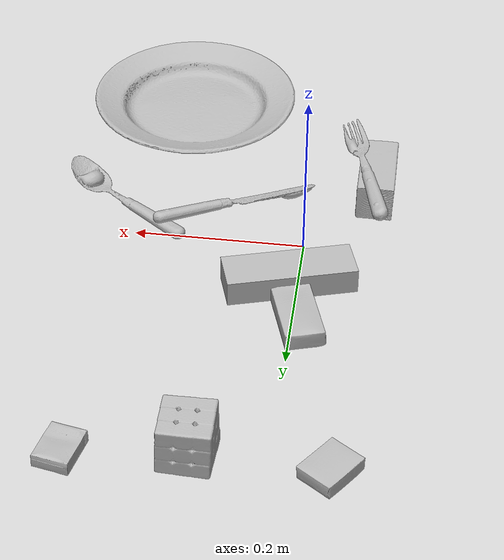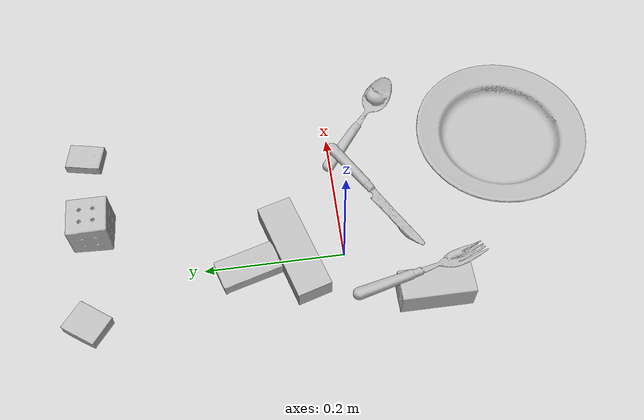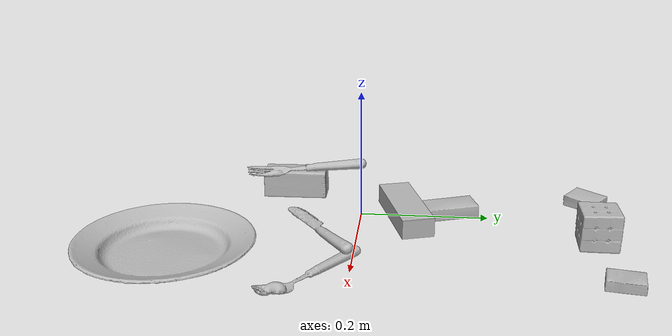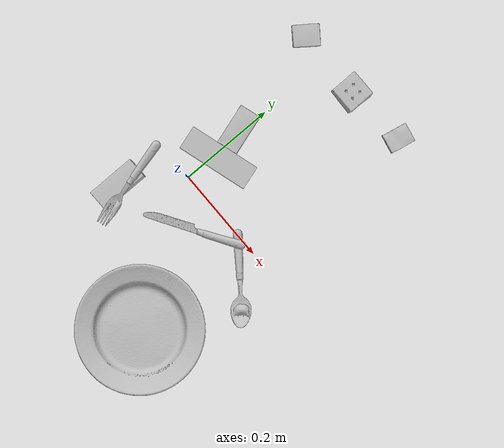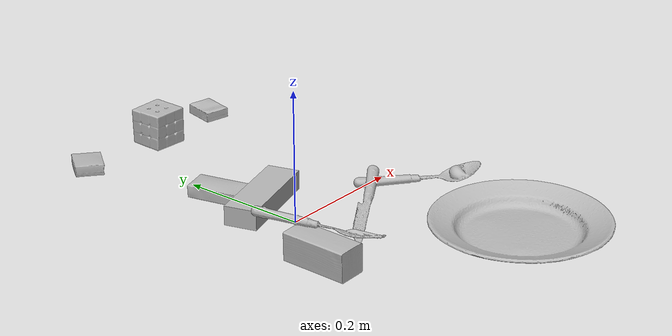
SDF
<sdf version="1.4">
  <world name="default">
    <light name="light1" type="point">
      <pose>0 0 1 0 0 0</pose>
      <diffuse>3 3 3 1</diffuse>
      <specular>3 3 3 1</specular>
    </light>
    <light name="light2" type="point">
      <pose>0 0.5 2 0 0 0</pose>
      <diffuse>1 1 1 1</diffuse>
      <specular>1 1 1 1</specular>
    </light>
    <light name="light3" type="point">
      <pose>0 0.5 2 0 0 0</pose>
      <diffuse>3 3 3 1</diffuse>
      <specular>3 3 3 1</specular>
    </light>
    <scene>
      <ambient>0.7 0.7 0.7</ambient>
    </scene>
    <model name="box11">
      <link name="link_box11">
        <collision name="default">
          <geometry>
            <mesh>
              <uri>model://cracker_box/collision_meshes/collision.obj</uri>
              <scale>0.25 0.25 0.25</scale>
            </mesh>
          </geometry>
          <surface>
            <friction>
              <ode>
                <mu>0.5</mu>
                <mu2>0.5</mu2>
              </ode>
            </friction>
          <contact>
        <ode>
            <max_vel>0</max_vel>
            <min_depth>0.0001</min_depth>
            <kp>1e8</kp>
        </ode>
    </contact></surface>
        </collision>
        <visual name="default">
          <geometry>
            <mesh>
              <uri>model://cracker_box/visual_meshes/visual.dae</uri>
              <scale>0.25 0.25 0.25</scale>
            </mesh>
          </geometry>
        </visual>
        <inertial>
          <mass>0.022244147956371307</mass>
          <pose>0.00023660442093387246 6.358561950037256e-05 -0.00042573834070935845 -0.00031620774024180285 -0.011106489600345375 0.0025467943041161943</pose>
          <inertia>
            <ixx>3.5361988e-06</ixx>
            <iyy>5.838959e-06</iyy>
            <izz>8.33273e-06</izz>
            <ixy>0</ixy>
            <ixz>0</ixz>
            <iyz>0</iyz>
          </inertia>
        </inertial>
      </link>
      <pose>0.2111598402261734 0.3688811659812927 0.009096026420593262 -0.014051257101804807 -0.0050162386080917516 1.3684680258389093</pose>
    </model>
    <model name="box12">
      <link name="link_box12">
        <collision name="default">
          <geometry>
            <mesh>
              <uri>model://wood_block/collision_meshes/collision.obj</uri>
              <scale>0.5 0.5 0.5</scale>
            </mesh>
          </geometry>
          <surface>
            <friction>
              <ode>
                <mu>0.5</mu>
                <mu2>0.5</mu2>
              </ode>
            </friction>
          <contact>
        <ode>
            <max_vel>0</max_vel>
            <min_depth>0.0001</min_depth>
            <kp>1e8</kp>
        </ode>
    </contact></surface>
        </collision>
        <visual name="default">
          <geometry>
            <mesh>
              <uri>model://wood_block/visual_meshes/visual.dae</uri>
              <scale>0.5 0.5 0.5</scale>
            </mesh>
          </geometry>
        </visual>
        <inertial>
          <mass>0.19826212525367737</mass>
          <pose>-2.9066577553749084e-06 -0.00028540476341731846 0.00013204291462898254 -0.05221087153268513 -0.0051926957009938435 -0.006861378574469354</pose>
          <inertia>
            <ixx>6.632619e-05</ixx>
            <iyy>0.00020952444</iyy>
            <izz>0.0002087407</izz>
            <ixy>0</ixy>
            <ixz>0</ixz>
            <iyz>0</iyz>
          </inertia>
        </inertial>
      </link>
      <pose>-0.07797759026288986 -0.1153017207980156 0.022527748718857765 -0.015738673914156936 -0.0003679482380014024 1.5741953546806469</pose>
    </model>
    <model name="box13">
      <link name="link_box13">
        <collision name="default">
          <geometry>
            <mesh>
              <uri>model://pudding_box/collision_meshes/collision.obj</uri>
              <scale>0.5 0.5 0.5</scale>
            </mesh>
          </geometry>
          <surface>
            <friction>
              <ode>
                <mu>0.5</mu>
                <mu2>0.5</mu2>
              </ode>
            </friction>
          <contact>
        <ode>
            <max_vel>0</max_vel>
            <min_depth>0.0001</min_depth>
            <kp>1e8</kp>
        </ode>
    </contact></surface>
        </collision>
        <visual name="default">
          <geometry>
            <mesh>
              <uri>model://pudding_box/visual_meshes/visual.dae</uri>
              <scale>0.5 0.5 0.5</scale>
            </mesh>
          </geometry>
        </visual>
        <inertial>
          <mass>0.049741584807634354</mass>
          <pose>0.00024474109522998333 0.0004033942532259971 -0.0002594413817860186 0.005213101800084814 -0.006603799174386178 0.020079821432586128</pose>
          <inertia>
            <ixx>1.4057575e-05</ixx>
            <iyy>9.458037e-06</iyy>
            <izz>2.0759684e-05</izz>
            <ixy>0</ixy>
            <ixz>0</ixz>
            <iyz>0</iyz>
          </inertia>
        </inertial>
      </link>
      <pose>-0.06274548918008804 0.36050793528556824 0.009862907230854034 0.02234841347185972 -0.011391729951370055 2.5051075977416986</pose>
    </model>
    <model name="box21">
      <link name="link_box21">
        <collision name="default">
          <geometry>
            <mesh>
              <uri>model://rubiks_cube/collision_meshes/collision.obj</uri>
              <scale>1.0 1.0 1.0</scale>
            </mesh>
          </geometry>
          <surface>
            <friction>
              <ode>
                <mu>0.5</mu>
                <mu2>0.5</mu2>
              </ode>
            </friction>
          <contact>
        <ode>
            <max_vel>0</max_vel>
            <min_depth>0.0001</min_depth>
            <kp>1e8</kp>
        </ode>
    </contact></surface>
        </collision>
        <visual name="default">
          <geometry>
            <mesh>
              <uri>model://rubiks_cube/visual_meshes/visual.dae</uri>
              <scale>1.0 1.0 1.0</scale>
            </mesh>
          </geometry>
        </visual>
        <inertial>
          <mass>0.14589080214500427</mass>
          <pose>2.6721043468569405e-05 5.256966323941015e-05 -7.264316082000732e-06 -0.054672881442690106 -0.09814117646273159 -0.034455034483302956</pose>
          <inertia>
            <ixx>8.061447e-05</ixx>
            <iyy>8.023852e-05</iyy>
            <izz>8.128248e-05</izz>
            <ixy>0</ixy>
            <ixz>0</ixz>
            <iyz>0</iyz>
          </inertia>
        </inertial>
      </link>
      <pose>0.08250182867050171 0.3545205295085907 0.028678985312581062 -1.653692690723315e-06 5.648418739011843e-07 -1.5740128903080826</pose>
    </model>
    <model name="box22">
      <link name="link_box22">
        <collision name="default">
          <geometry>
            <mesh>
              <uri>model://jenga/collision_meshes/collision.obj</uri>
              <scale>1.0 1.0 1.0</scale>
            </mesh>
          </geometry>
          <surface>
            <friction>
              <ode>
                <mu>0.5</mu>
                <mu2>0.5</mu2>
              </ode>
            </friction>
          <contact>
        <ode>
            <max_vel>0</max_vel>
            <min_depth>0.0001</min_depth>
            <kp>1e8</kp>
        </ode>
    </contact></surface>
        </collision>
        <visual name="default">
          <geometry>
            <mesh>
              <uri>model://jenga/visual_meshes/visual.dae</uri>
              <scale>1.0 1.0 1.0</scale>
            </mesh>
          </geometry>
        </visual>
        <inertial>
          <mass>0.13963866233825684</mass>
          <pose>-2.502855807051674e-07 -0.00010250010382151231 -4.092339804628864e-05 0.0 -7.342154049184251e-07 0.0</pose>
          <inertia>
            <ixx>3.8641407e-05</ixx>
            <iyy>0.00026183313</iyy>
            <izz>0.00027952914</izz>
            <ixy>0</ixy>
            <ixz>0</ixz>
            <iyz>0</iyz>
          </inertia>
        </inertial>
      </link>
      <pose>0.01005677692592144 0.07057204097509384 0.015000127255916595 2.0631463204367796e-05 -1.1522785029540644e-06 0.2945864307090178</pose>
    </model>
    <model name="box23">
      <link name="link_box23">
        <collision name="default">
          <geometry>
            <mesh>
              <uri>model://sugar_box/collision_meshes/collision.obj</uri>
              <scale>0.5 0.5 0.5</scale>
            </mesh>
          </geometry>
          <surface>
            <friction>
              <ode>
                <mu>0.5</mu>
                <mu2>0.5</mu2>
              </ode>
            </friction>
          <contact>
        <ode>
            <max_vel>0</max_vel>
            <min_depth>0.0001</min_depth>
            <kp>1e8</kp>
        </ode>
    </contact></surface>
        </collision>
        <visual name="default">
          <geometry>
            <mesh>
              <uri>model://sugar_box/visual_meshes/visual.dae</uri>
              <scale>0.5 0.5 0.5</scale>
            </mesh>
          </geometry>
        </visual>
        <inertial>
          <mass>0.09426560252904892</mass>
          <pose>0.0005171863595023751 1.924554817378521e-05 -0.00018182402709499002 -0.00040462606744182556 0.0010506635219056535 0.0026153790218759383</pose>
          <inertia>
            <ixx>1.963546e-05</ixx>
            <iyy>6.346583e-05</iyy>
            <izz>7.597618e-05</izz>
            <ixy>0</ixy>
            <ixz>0</ixz>
            <iyz>0</iyz>
          </inertia>
        </inertial>
      </link>
      <pose>-0.006882763467729092 0.13718995451927185 0.01140653807669878 -0.0027483990425575776 -0.021928052317505786 1.8631029365136873</pose>
    </model>
    <model name="plate1">
      <link name="link_plate1">
        <collision name="default">
          <geometry>
            <mesh>
              <uri>model://plate/collision_meshes/collision.obj</uri>
              <scale>1.0 1.0 1.0</scale>
            </mesh>
          </geometry>
          <surface>
            <friction>
              <ode>
                <mu>0.5</mu>
                <mu2>0.5</mu2>
              </ode>
            </friction>
          <contact>
        <ode>
            <max_vel>0</max_vel>
            <min_depth>0.0001</min_depth>
            <kp>1e8</kp>
        </ode>
    </contact></surface>
        </collision>
        <visual name="default">
          <geometry>
            <mesh>
              <uri>model://plate/visual_meshes/visual.dae</uri>
              <scale>1.0 1.0 1.0</scale>
            </mesh>
          </geometry>
        </visual>
        <inertial>
          <mass>0.11197491735219955</mass>
          <pose>-0.0006044617621228099 0.00027825823053717613 -0.001056199544109404 0.00221882520869589 -0.003225452482750881 0.45259630068278056</pose>
          <inertia>
            <ixx>0.0005238209</ixx>
            <iyy>0.00051881076</iyy>
            <izz>0.0010245154</izz>
            <ixy>0</ixy>
            <ixz>0</ixz>
            <iyz>0</iyz>
          </inertia>
        </inertial>
      </link>
      <pose>0.16950781643390656 -0.26836082339286804 0.013732999563217163 -1.1531390849513858e-08 -1.019769458887643e-08 -2.240102566013176</pose>
    </model>
    <model name="silverware1">
      <link name="link_silverware1">
        <collision name="default">
          <geometry>
            <mesh>
              <uri>model://knife/collision_meshes/collision.obj</uri>
              <scale>1.0 1.0 1.0</scale>
            </mesh>
          </geometry>
          <surface>
            <friction>
              <ode>
                <mu>0.5</mu>
                <mu2>0.5</mu2>
              </ode>
            </friction>
          <contact>
        <ode>
            <max_vel>0</max_vel>
            <min_depth>0.0001</min_depth>
            <kp>1e8</kp>
        </ode>
    </contact></surface>
        </collision>
        <visual name="default">
          <geometry>
            <mesh>
              <uri>model://knife/visual_meshes/visual.dae</uri>
              <scale>1.0 1.0 1.0</scale>
            </mesh>
          </geometry>
        </visual>
        <inertial>
          <mass>0.01465720683336258</mass>
          <pose>-0.023785248398780823 0.0015275123296305537 5.062019408796914e-05 0.07304601322977639 0.017248415474028462 -0.007409829977624996</pose>
          <inertia>
            <ixx>4.1603096e-07</ixx>
            <iyy>5.6310615e-05</iyy>
            <izz>5.6444613e-05</izz>
            <ixy>0</ixy>
            <ixz>0</ixz>
            <iyz>0</iyz>
          </inertia>
        </inertial>
      </link>
      <pose>0.08714432269334793 -0.05704672634601593 0.014282740652561188 -0.336406022039633 0.07683986932137973 -2.586262556089332</pose>
    </model>
    <model name="silverware2">
      <link name="link_silverware2">
        <collision name="default">
          <geometry>
            <mesh>
              <uri>model://spoon/collision_meshes/collision.obj</uri>
              <scale>1.0 1.0 1.0</scale>
            </mesh>
          </geometry>
          <surface>
            <friction>
              <ode>
                <mu>0.5</mu>
                <mu2>0.5</mu2>
              </ode>
            </friction>
          <contact>
        <ode>
            <max_vel>0</max_vel>
            <min_depth>0.0001</min_depth>
            <kp>1e8</kp>
        </ode>
    </contact></surface>
        </collision>
        <visual name="default">
          <geometry>
            <mesh>
              <uri>model://spoon/visual_meshes/visual.dae</uri>
              <scale>1.0 1.0 1.0</scale>
            </mesh>
          </geometry>
        </visual>
        <inertial>
          <mass>0.03463635593652725</mass>
          <pose>-0.005526320077478886 -0.0016034176805987954 -0.0007271658396348357 0.035218626746325574 -0.03906584480927328 0.006150611928774215</pose>
          <inertia>
            <ixx>1.9265303e-06</ixx>
            <iyy>0.0001317902</iyy>
            <izz>0.00013274024</izz>
            <ixy>0</ixy>
            <ixz>0</ixz>
            <iyz>0</iyz>
          </inertia>
        </inertial>
      </link>
      <pose>0.22182504832744598 -0.05136454850435257 0.00862906128168106 0.07452564850346864 0.01909381863797429 -0.6609664773456213</pose>
    </model>
    <model name="silverware3">
      <link name="link_silverware3">
        <collision name="default">
          <geometry>
            <mesh>
              <uri>model://fork/collision_meshes/collision.obj</uri>
              <scale>1.0 1.0 1.0</scale>
            </mesh>
          </geometry>
          <surface>
            <friction>
              <ode>
                <mu>0.5</mu>
                <mu2>0.5</mu2>
              </ode>
            </friction>
          <contact>
        <ode>
            <max_vel>0</max_vel>
            <min_depth>0.0001</min_depth>
            <kp>1e8</kp>
        </ode>
    </contact></surface>
        </collision>
        <visual name="default">
          <geometry>
            <mesh>
              <uri>model://fork/visual_meshes/visual.dae</uri>
              <scale>1.0 1.0 1.0</scale>
            </mesh>
          </geometry>
        </visual>
        <inertial>
          <mass>0.019285527989268303</mass>
          <pose>-0.029570043087005615 0.0004658823017962277 0.0003218861238565296 -0.013551447953525298 -0.010977835959949084 0.014453901308334693</pose>
          <inertia>
            <ixx>6.760669e-07</ixx>
            <iyy>5.0348972e-05</iyy>
            <izz>5.065136e-05</izz>
            <ixy>0</ixy>
            <ixz>0</ixz>
            <iyz>0</iyz>
          </inertia>
        </inertial>
      </link>
      <pose>-0.06477635353803635 -0.0943305641412735 0.0509549044072628 -0.2729118250714366 0.03229051735159743 -1.3253298214880982</pose>
    </model>
  <physics type="ode">
      <max_contacts>50</max_contacts>
      <ode>
        <solver>
          <type>quick</type>
          <iters>75</iters>
        </solver>
        <constraints>
          <contact_max_correcting_vel>0</contact_max_correcting_vel>
          <contact_surface_layer>0</contact_surface_layer>
        </constraints>
      </ode>
    </physics></world>
</sdf>
